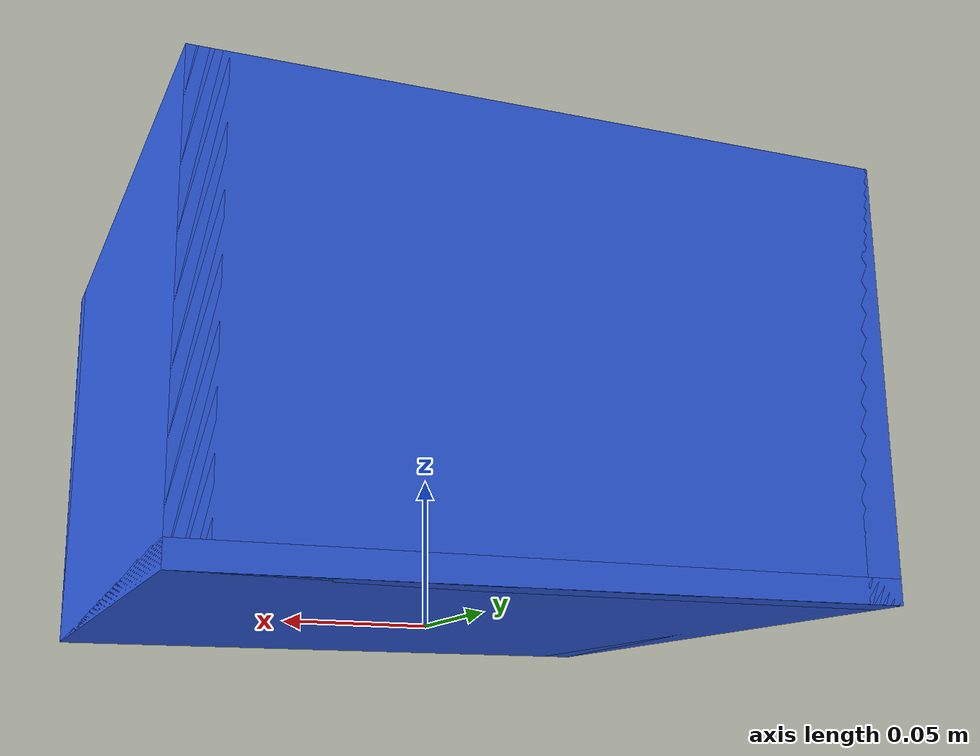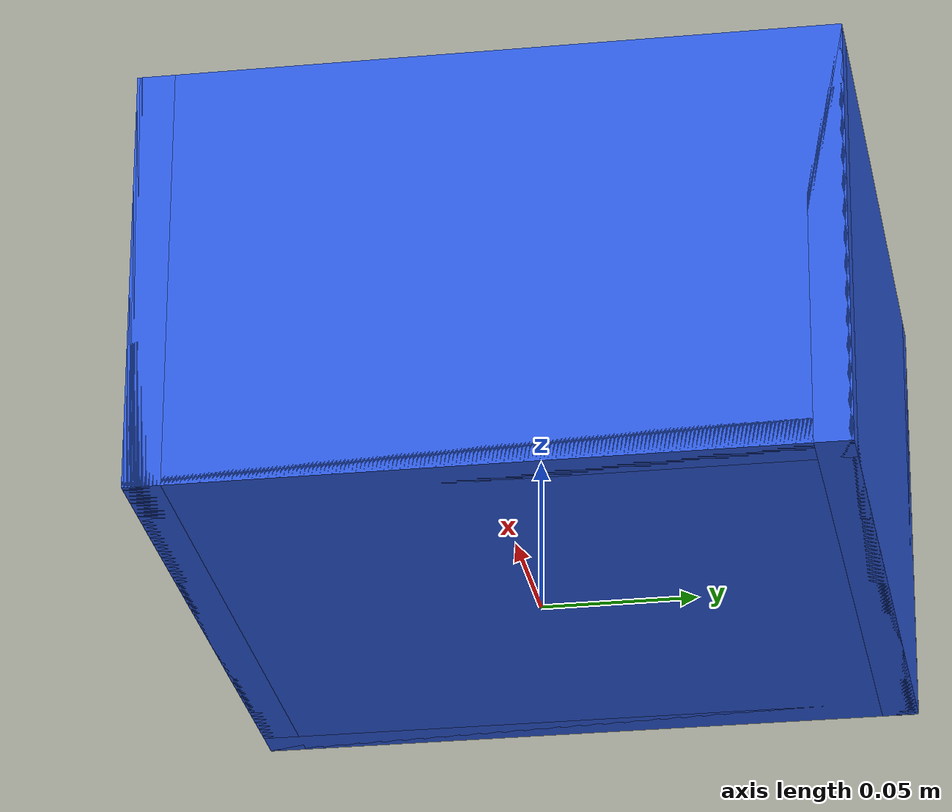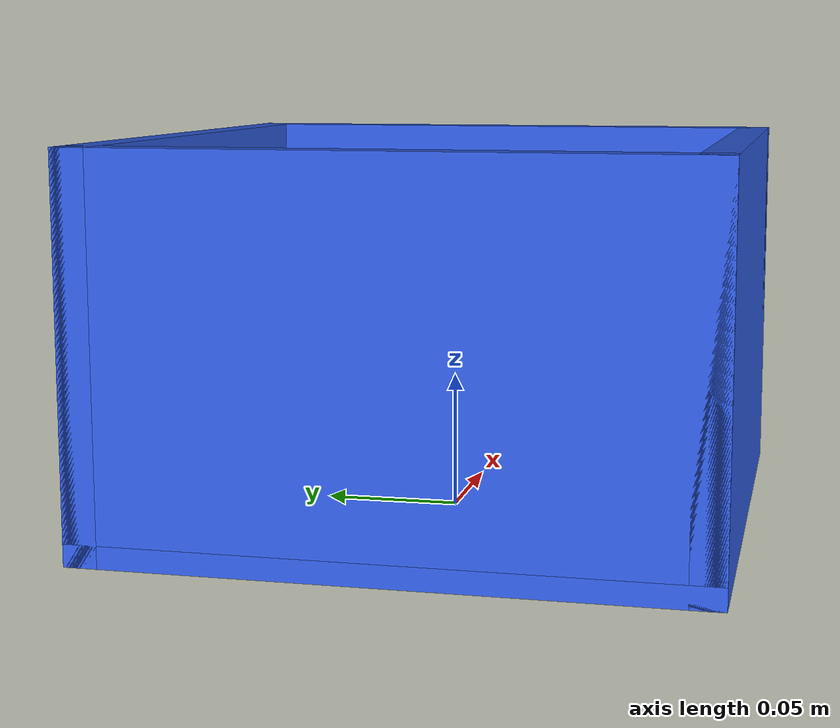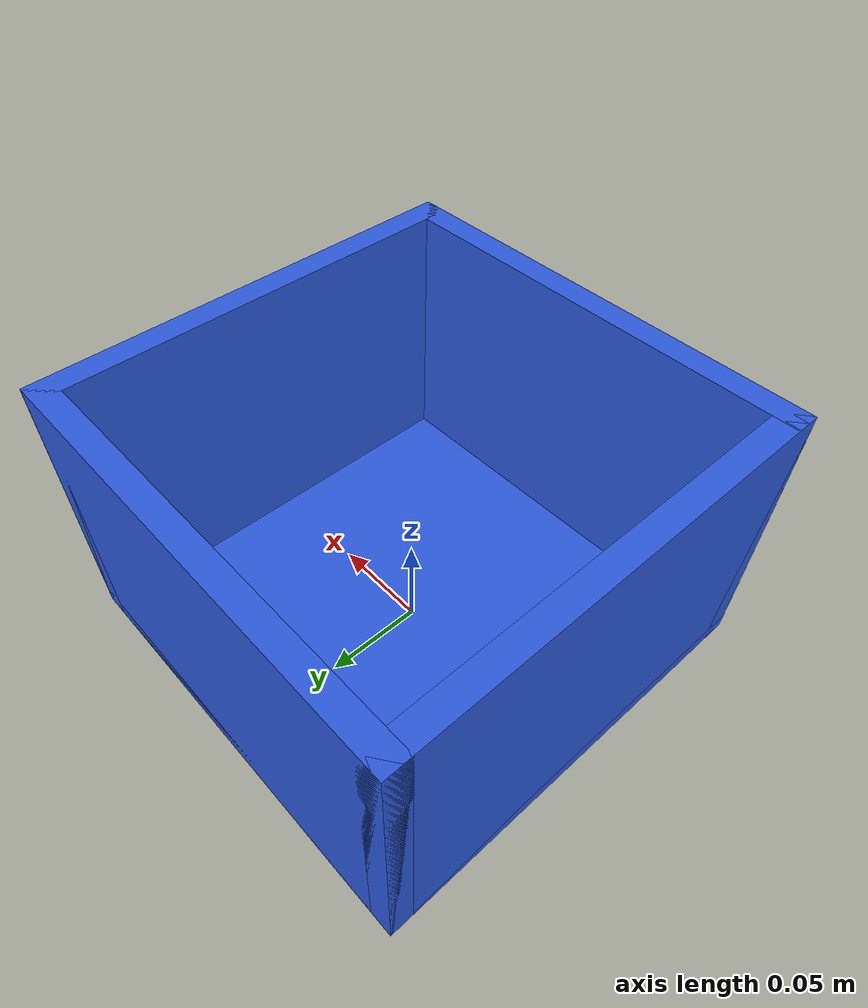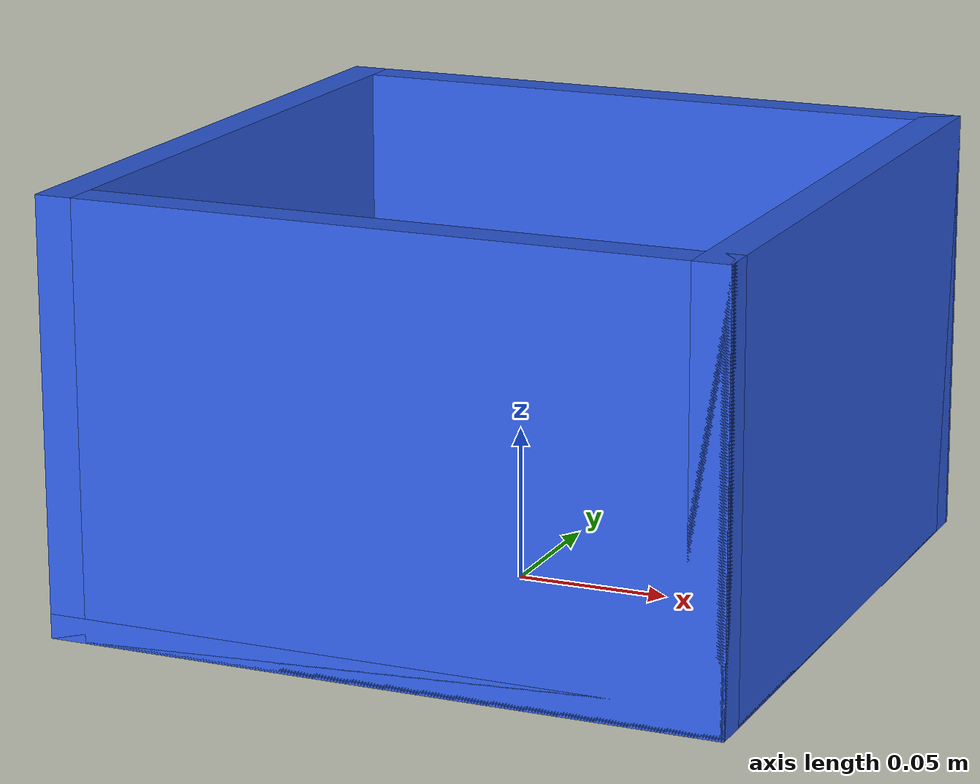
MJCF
<mujoco model="basket_large">
  <asset>
    <material name="basket_large_mat" rgba="0.18 0.36 0.88 1" specular="0.25" shininess="0.35" reflectance="0.08" />
  </asset>

  <worldbody>
    <body>
      <body name="object">
        <site type="box" pos="0 0 0.080" quat="1 0 0 0" size="0.102 0.102 0.070" group="0" rgba="0.8 0 0 0" name="contain_region" />

        <geom name="basket_large_bottom_visual" type="box" pos="0 0 0.004" size="0.110 0.110 0.004" material="basket_large_mat" contype="0" conaffinity="0" group="1" />
        <geom name="basket_large_wall_right_visual" type="box" pos="0.104 0 0.070" size="0.006 0.110 0.070" material="basket_large_mat" contype="0" conaffinity="0" group="1" />
        <geom name="basket_large_wall_left_visual" type="box" pos="-0.104 0 0.070" size="0.006 0.110 0.070" material="basket_large_mat" contype="0" conaffinity="0" group="1" />
        <geom name="basket_large_wall_front_visual" type="box" pos="0 0.104 0.070" size="0.110 0.006 0.070" material="basket_large_mat" contype="0" conaffinity="0" group="1" />
        <geom name="basket_large_wall_back_visual" type="box" pos="0 -0.104 0.070" size="0.110 0.006 0.070" material="basket_large_mat" contype="0" conaffinity="0" group="1" />

        <geom name="basket_large_bottom_collision" type="box" pos="0 0 0.004" size="0.110 0.110 0.004" group="0" density="120" friction="1.0 0.3 0.1" rgba="0.8 0.8 0.8 0.3" />
        <geom name="basket_large_wall_right_collision" type="box" pos="0.104 0 0.070" size="0.006 0.110 0.070" group="0" density="120" friction="1.0 0.3 0.1" rgba="0.8 0.8 0.8 0.3" />
        <geom name="basket_large_wall_left_collision" type="box" pos="-0.104 0 0.070" size="0.006 0.110 0.070" group="0" density="120" friction="1.0 0.3 0.1" rgba="0.8 0.8 0.8 0.3" />
        <geom name="basket_large_wall_front_collision" type="box" pos="0 0.104 0.070" size="0.110 0.006 0.070" group="0" density="120" friction="1.0 0.3 0.1" rgba="0.8 0.8 0.8 0.3" />
        <geom name="basket_large_wall_back_collision" type="box" pos="0 -0.104 0.070" size="0.110 0.006 0.070" group="0" density="120" friction="1.0 0.3 0.1" rgba="0.8 0.8 0.8 0.3" />
      </body>

      <site rgba="0 0 0 0" size="0.005" pos="0 0 -0.06" name="bottom_site" />
      <site rgba="0 0 0 0" size="0.005" pos="0 0 0.04" name="top_site" />
      <site rgba="0 0 0 0" size="0.005" pos="0.025 0.025 0" name="horizontal_radius_site" />
    </body>
  </worldbody>
</mujoco>
